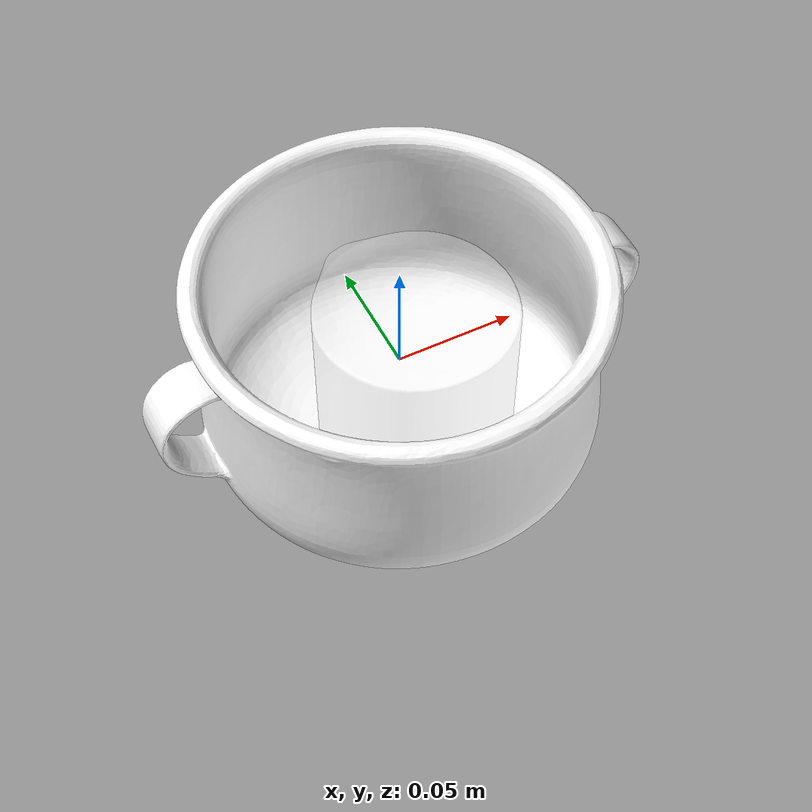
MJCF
<mujoco model="xicara">
  <asset>
    <mesh file="visual/modelo.obj" name="xicara_vis"/>
    <material name="mat_xicara" rgba="1 1 1 1" specular="0.3" shininess="0.3"/>
    <mesh file="colisao/casco_0.obj" name="xicara_col_0"/>
  </asset>
  <worldbody>
    <body>
      <body name="object">
        <geom type="mesh" mesh="xicara_vis" conaffinity="0" contype="0" group="1" material="mat_xicara"/>
        <geom class="collision" type="mesh" mesh="xicara_col_0"/>
      </body>
      <site rgba="0 0 0 0" size="0.005" pos="0 0 -0.04600" name="bottom_site"/>
      <site rgba="0 0 0 0" size="0.005" pos="0 0 0.04600" name="top_site"/>
      <site rgba="0 0 0 0" size="0.005" pos="0.05358 0 0" name="horizontal_radius_site"/>
    </body>
  </worldbody>
  <default>
    <default class="visual">
      <geom group="1" density="100"/>
    </default>
    <default class="collision">
      <geom group="0" mass="0.1500" solimp="0.95 0.98 0.001" solref="0.004 1" rgba="1 1 1 0.25" friction="1.2 0.05 0.002"/>
    </default>
  </default>
</mujoco>
